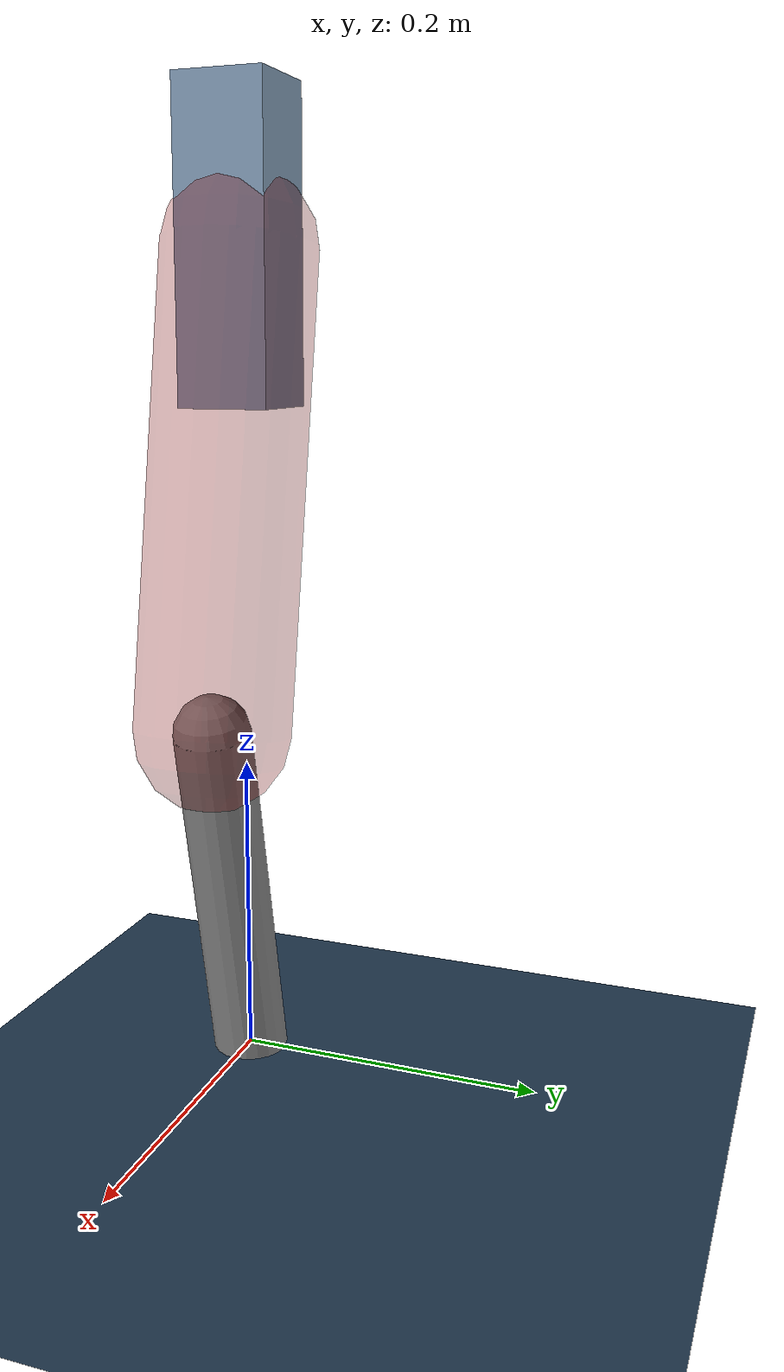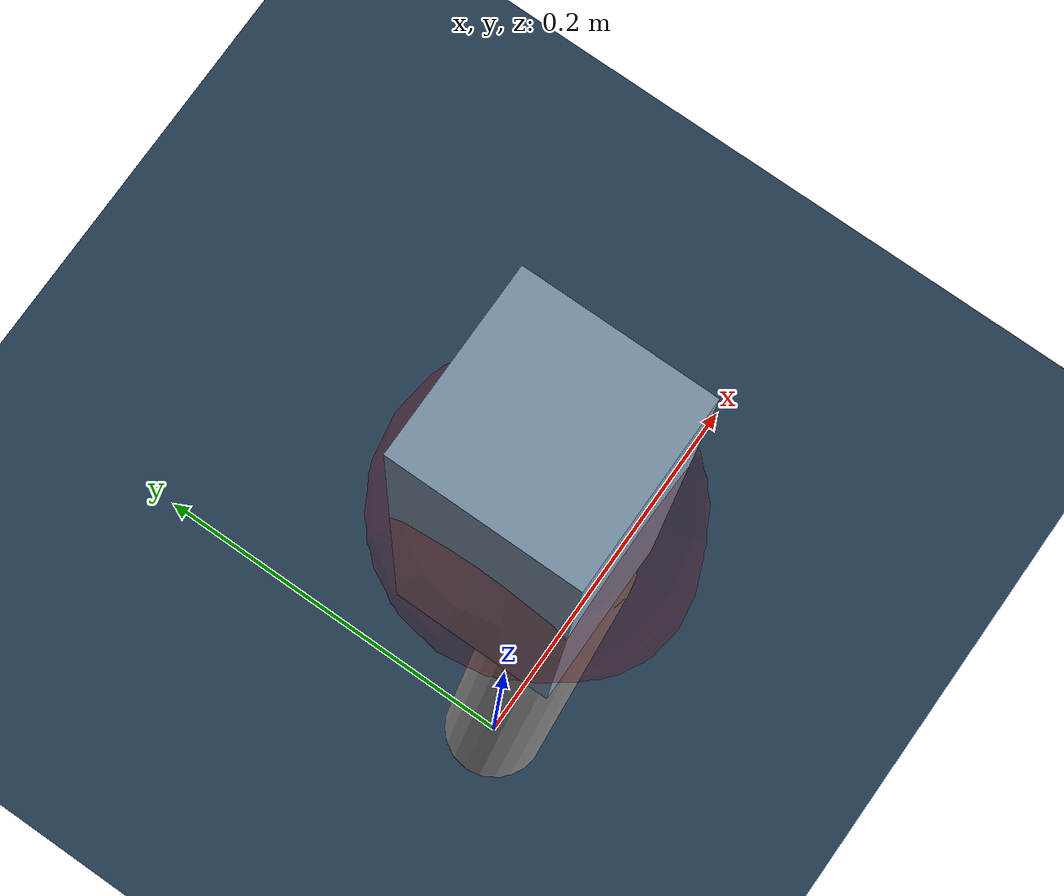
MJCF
<mujoco model="Hopper2D">
	<compiler inertiafromgeom="true" angle="radian" />
	<option timestep="0.001" integrator="implicit" cone="elliptic" solver="Newton" tolerance="1e-10" />

	<default>
		<geom contype="1" conaffinity="1" condim="3" friction="2 0.005 0.0001" solref="0.005 1" />
		<joint limited="true" damping="0.1" />
	</default>

	<asset>
		<texture name="skybox" type="skybox" builtin="gradient" rgb1=".4 .6 .8" rgb2="0 0 0" width="800" height="800" />
		<texture name="grid" type="2d" builtin="checker" rgb1=".1 .2 .3" rgb2=".2 .3 .4" width="300" height="300" mark="edge" markrgb=".2 .3 .4" />
		<material name="ground" texture="grid" texrepeat="1 1" texuniform="true" reflectance="0.1" />
		<material name="leg" rgba="0.5 0.6 0.7 1" />
	</asset>

	<worldbody>

		<geom name="floor" type="plane" size="5 5 0.25" material="ground" />

		<light directional="false" diffuse="0.8 0.8 0.8" specular="0.3 0.3 0.3" pos="0 0 2" dir="0 0 -1" />
		<light mode="targetbodycom" target="base" directional="false" diffuse="0.8 0.8 0.8" specular="0.3 0.3 0.3" pos="0 0 2" dir="0 0 -1" />

		<camera name="fixed" pos="0 -2 1" xyaxes="1 0 0 0 0 1" />
		<camera name="tracking" mode="trackcom" pos="0 -3 1" />

		<body name="root" pos="0 0 0.5351188922297592">
			<joint name="slide_x" type="slide" axis="1 0 0" range="-100 100" />
			<joint name="slide_z" type="slide" axis="0 0 1" range="0 10" />

			<body name="base" pos="0 0 0">
				<geom name="torso" type="box" size="0.03 0.03 0.1" mass="2.9829999999999997" material="leg" />

				<body name="link1" pos="0 0 0" euler="0 1.401087770409889 0">
					<joint type="hinge" axis="0 -1 0" pos="0 0 0" name="hinge1" limited="true" range="-3.14 3.14" stiffness="0" damping="0.1" />
					<geom name="thigh" type="capsule" fromto="0 0 0 0.30536755789272774 0 0" size="0.05" rgba="0.5 0 0 0.3" mass="1.0032924063103648" />

					<body name="link2" pos="0.30536755789272774 0 0" euler="0 0.3865223091081788 0">
						<joint type="hinge" axis="0 -1 0" pos="0 0 0" name="hinge2" limited="true" range="-3.14 3.14" stiffness="0" damping="0.1" />
						<geom name="shank" type="capsule" fromto="0 0 0 0.23975133433703139 0 0" size="0.025" mass="0.43407620090332827" />

					</body>
				</body>
			</body>
		</body>
	</worldbody>

	<actuator>
		<motor name="torque1" joint="hinge1" ctrlrange="-101.55623357223108 101.55623357223108" ctrllimited="true" gear="1" />
		<motor name="torque2" joint="hinge2" ctrlrange="-89.92035647115557 89.92035647115557" ctrllimited="true" gear="1" />
	</actuator>
</mujoco>
